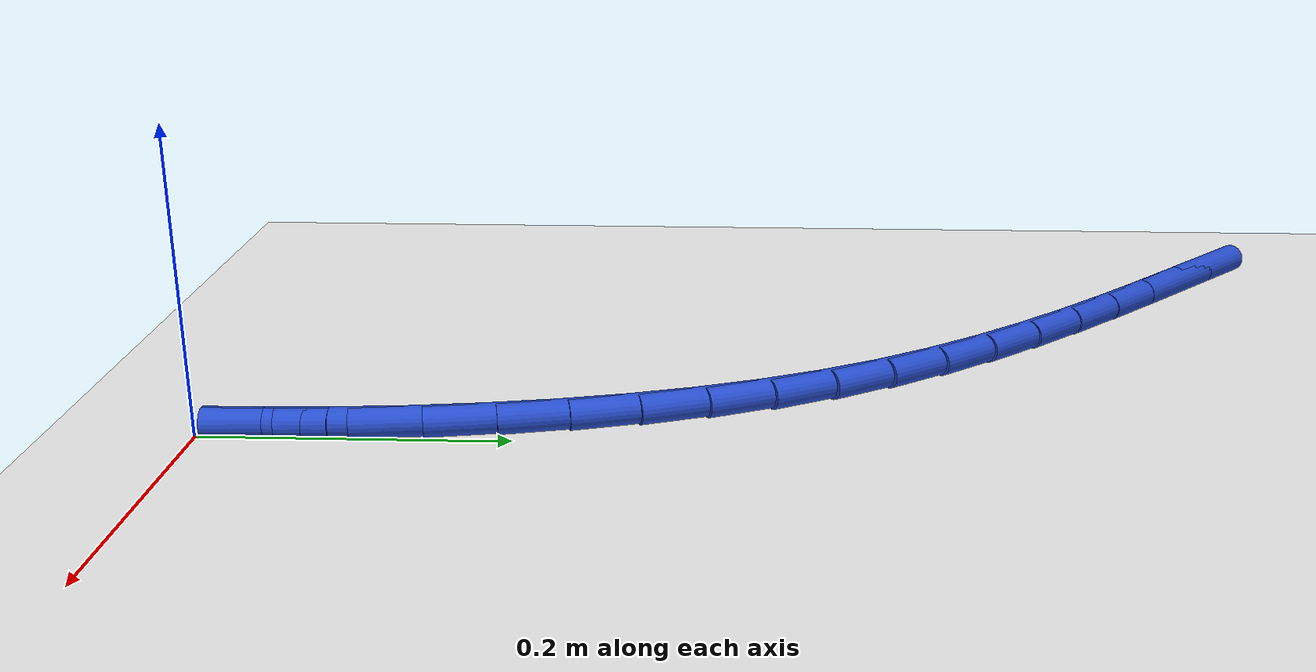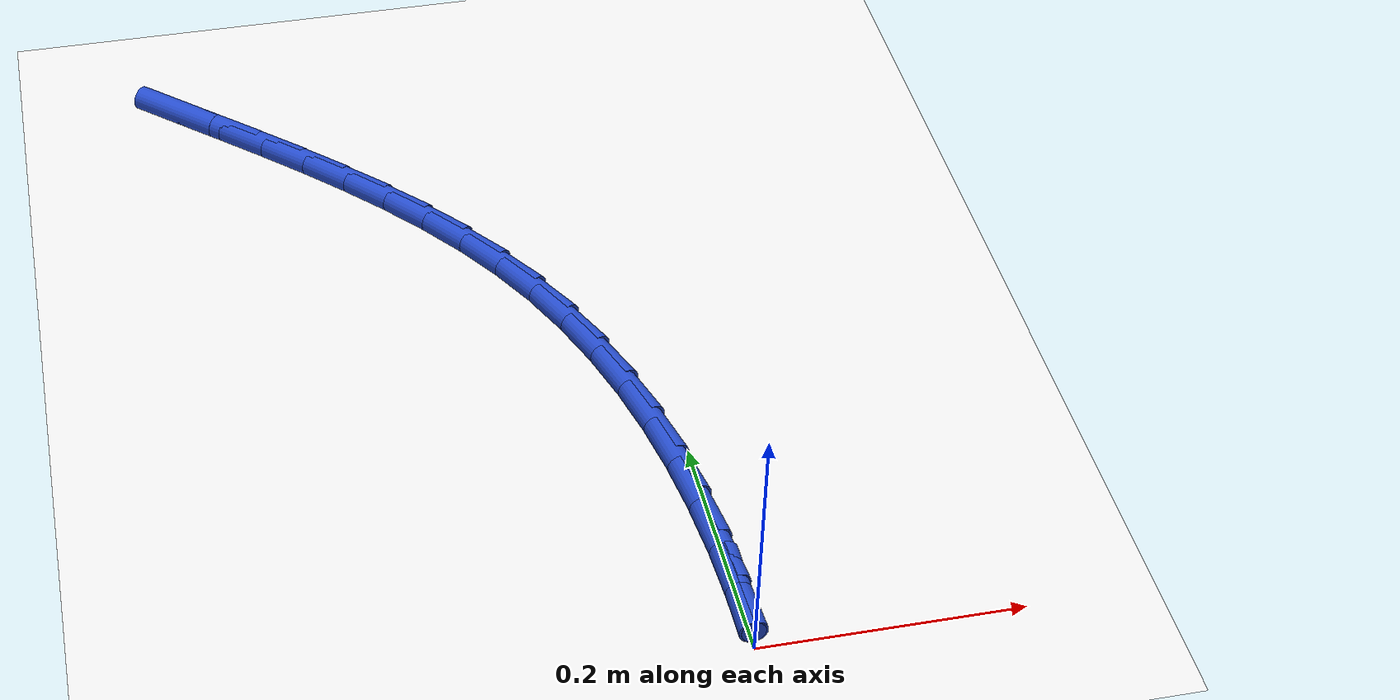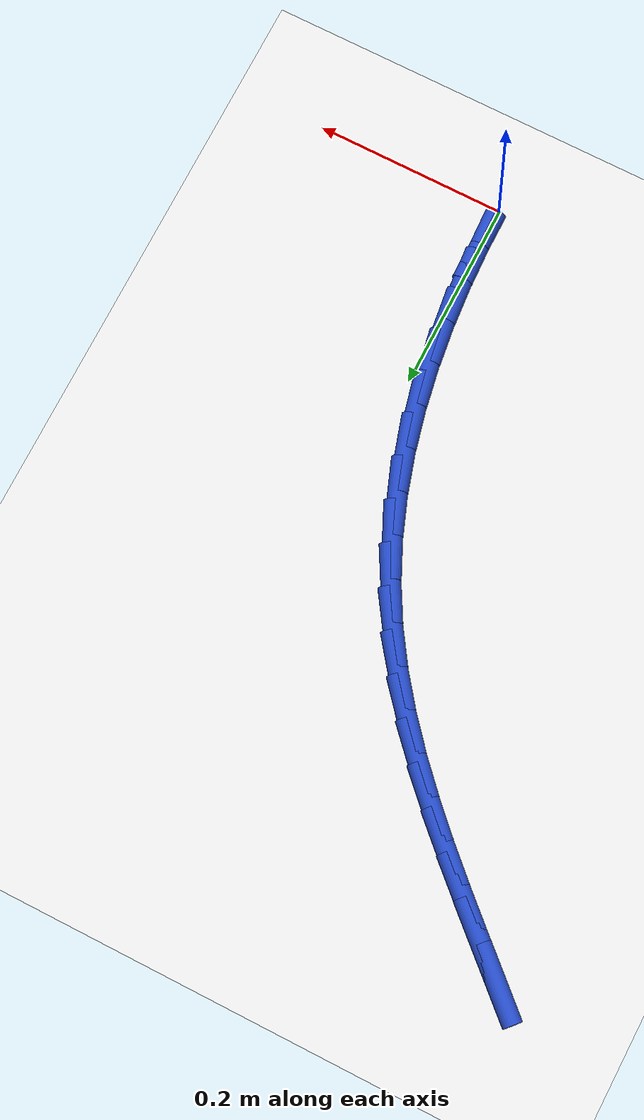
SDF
<sdf version="1.6">
 <world name="default">
  <model name="ground_plane">
   <static>1</static>
   <link name="link">
    <collision name="collision">
     <geometry><plane><normal>0 0 1</normal><size>100 100</size></plane></geometry>
     <surface><friction><ode><mu>100</mu><mu2>50</mu2></ode></friction></surface>
    </collision>
    <visual name="visual">
     <cast_shadows>0</cast_shadows>
     <geometry><plane><normal>0 0 1</normal><size>100 100</size></plane></geometry>
     <material>
      <script><uri>file://media/materials/scripts/gazebo.material</uri><name>Gazebo/WhiteGlow</name></script>
     </material>
    </visual>
   </link>
  </model>
  <model name="line">
   <link name="link_1">
    <pose>-0.0003006945332461743 0.045901734075765366 0.01 0 1.57 -1.5239608890561258</pose>
    <collision name="collision">
     <geometry><cylinder><radius>0.01</radius><length>0.08</length></cylinder></geometry>
    </collision>
    <visual name="visual">
     <material>
      <script><name>Gazebo/Blue</name><uri>file://media/materials/scripts/gazebo.material</uri></script>
     </material>
     <geometry><cylinder><radius>0.01</radius><length>0.08</length></cylinder></geometry>
    </visual>
   </link>
   <link name="link_2">
    <pose>-0.0024520561953644262 0.09180262643703892 0.01 0 1.57 -1.480812491341075</pose>
    <collision name="collision">
     <geometry><cylinder><radius>0.01</radius><length>0.08</length></cylinder></geometry>
    </collision>
    <visual name="visual">
     <material>
      <script><name>Gazebo/Blue</name><uri>file://media/materials/scripts/gazebo.material</uri></script>
     </material>
     <geometry><cylinder><radius>0.01</radius><length>0.08</length></cylinder></geometry>
    </visual>
   </link>
   <link name="link_3">
    <pose>-0.006572178366805169 0.13746633713611803 0.01 0 1.57 -1.4342981341041827</pose>
    <collision name="collision">
     <geometry><cylinder><radius>0.01</radius><length>0.08</length></cylinder></geometry>
    </collision>
    <visual name="visual">
     <material>
      <script><name>Gazebo/Blue</name><uri>file://media/materials/scripts/gazebo.material</uri></script>
     </material>
     <geometry><cylinder><radius>0.01</radius><length>0.08</length></cylinder></geometry>
    </visual>
   </link>
   <link name="link_4">
    <pose>-0.012779154428018809 0.18265652622530024 0.01 0 1.57 -1.3838881149002507</pose>
    <collision name="collision">
     <geometry><cylinder><radius>0.01</radius><length>0.08</length></cylinder></geometry>
    </collision>
    <visual name="visual">
     <material>
      <script><name>Gazebo/Blue</name><uri>file://media/materials/scripts/gazebo.material</uri></script>
     </material>
     <geometry><cylinder><radius>0.01</radius><length>0.08</length></cylinder></geometry>
    </visual>
   </link>
   <link name="link_5">
    <pose>-0.02119107775945575 0.227136853756883 0.01 0 1.57 -1.329032156727063</pose>
    <collision name="collision">
     <geometry><cylinder><radius>0.01</radius><length>0.08</length></cylinder></geometry>
    </collision>
    <visual name="visual">
     <material>
      <script><name>Gazebo/Blue</name><uri>file://media/materials/scripts/gazebo.material</uri></script>
     </material>
     <geometry><cylinder><radius>0.01</radius><length>0.08</length></cylinder></geometry>
    </visual>
   </link>
   <link name="link_6">
    <pose>-0.03192604174156644 0.2706709797831639 0.01 0 1.57 -1.2691762153304145</pose>
    <collision name="collision">
     <geometry><cylinder><radius>0.01</radius><length>0.08</length></cylinder></geometry>
    </collision>
    <visual name="visual">
     <material>
      <script><name>Gazebo/Blue</name><uri>file://media/materials/scripts/gazebo.material</uri></script>
     </material>
     <geometry><cylinder><radius>0.01</radius><length>0.08</length></cylinder></geometry>
    </visual>
   </link>
   <link name="link_7">
    <pose>-0.04510213975480125 0.3130225643564404 0.01 0 1.57 -1.2037932281394</pose>
    <collision name="collision">
     <geometry><cylinder><radius>0.01</radius><length>0.08</length></cylinder></geometry>
    </collision>
    <visual name="visual">
     <material>
      <script><name>Gazebo/Blue</name><uri>file://media/materials/scripts/gazebo.material</uri></script>
     </material>
     <geometry><cylinder><radius>0.01</radius><length>0.08</length></cylinder></geometry>
    </visual>
   </link>
   <link name="link_8">
    <pose>-0.0608374651796106 0.35395526752901 0.01 0 1.57 -1.1324320763547209</pose>
    <collision name="collision">
     <geometry><cylinder><radius>0.01</radius><length>0.08</length></cylinder></geometry>
    </collision>
    <visual name="visual">
     <material>
      <script><name>Gazebo/Blue</name><uri>file://media/materials/scripts/gazebo.material</uri></script>
     </material>
     <geometry><cylinder><radius>0.01</radius><length>0.08</length></cylinder></geometry>
    </visual>
   </link>
   <link name="link_9">
    <pose>-0.07925011139644492 0.39323274935317043 0.01 0 1.57 -1.055426300103091</pose>
    <collision name="collision">
     <geometry><cylinder><radius>0.01</radius><length>0.08</length></cylinder></geometry>
    </collision>
    <visual name="visual">
     <material>
      <script><name>Gazebo/Blue</name><uri>file://media/materials/scripts/gazebo.material</uri></script>
     </material>
     <geometry><cylinder><radius>0.01</radius><length>0.08</length></cylinder></geometry>
    </visual>
   </link>
   <link name="link_10">
    <pose>-0.10043933438602108 0.43064110363823793 0.01 0 1.57 -0.9810597001686475</pose>
    <collision name="collision">
     <geometry><cylinder><radius>0.01</radius><length>0.08</length></cylinder></geometry>
    </collision>
    <visual name="visual">
     <material>
      <script><name>Gazebo/Blue</name><uri>file://media/materials/scripts/gazebo.material</uri></script>
     </material>
     <geometry><cylinder><radius>0.01</radius><length>0.08</length></cylinder></geometry>
    </visual>
   </link>
   <link name="link_11">
    <pose>-0.12426717433968576 0.4662489282256752 0.01 0 1.57 -0.9158500449054999</pose>
    <collision name="collision">
     <geometry><cylinder><radius>0.01</radius><length>0.08</length></cylinder></geometry>
    </collision>
    <visual name="visual">
     <material>
      <script><name>Gazebo/Blue</name><uri>file://media/materials/scripts/gazebo.material</uri></script>
     </material>
     <geometry><cylinder><radius>0.01</radius><length>0.08</length></cylinder></geometry>
    </visual>
   </link>
   <link name="link_12">
    <pose>-0.15043350243103995 0.5003179506028407 0.01 0 1.57 -0.8605735555581524</pose>
    <collision name="collision">
     <geometry><cylinder><radius>0.01</radius><length>0.08</length></cylinder></geometry>
    </collision>
    <visual name="visual">
     <material>
      <script><name>Gazebo/Blue</name><uri>file://media/materials/scripts/gazebo.material</uri></script>
     </material>
     <geometry><cylinder><radius>0.01</radius><length>0.08</length></cylinder></geometry>
    </visual>
   </link>
   <link name="link_13">
    <pose>-0.17863504573243025 0.5331136426169617 0.01 0 1.57 -0.8154330089115209</pose>
    <collision name="collision">
     <geometry><cylinder><radius>0.01</radius><length>0.08</length></cylinder></geometry>
    </collision>
    <visual name="visual">
     <material>
      <script><name>Gazebo/Blue</name><uri>file://media/materials/scripts/gazebo.material</uri></script>
     </material>
     <geometry><cylinder><radius>0.01</radius><length>0.08</length></cylinder></geometry>
    </visual>
   </link>
   <link name="link_14">
    <pose>-0.2085685313162034 0.5649014761152653 0.01 0 1.57 -0.7803233747333668</pose>
    <collision name="collision">
     <geometry><cylinder><radius>0.01</radius><length>0.08</length></cylinder></geometry>
    </collision>
    <visual name="visual">
     <material>
      <script><name>Gazebo/Blue</name><uri>file://media/materials/scripts/gazebo.material</uri></script>
     </material>
     <geometry><cylinder><radius>0.01</radius><length>0.08</length></cylinder></geometry>
    </visual>
   </link>
   <link name="link_15">
    <pose>-0.2399306862547059 0.5959469229449786 0.01 0 1.57 -0.754974021610793</pose>
    <collision name="collision">
     <geometry><cylinder><radius>0.01</radius><length>0.08</length></cylinder></geometry>
    </collision>
    <visual name="visual">
     <material>
      <script><name>Gazebo/Blue</name><uri>file://media/materials/scripts/gazebo.material</uri></script>
     </material>
     <geometry><cylinder><radius>0.01</radius><length>0.08</length></cylinder></geometry>
    </visual>
   </link>
   <link name="link_16">
    <pose>-0.27241823762028455 0.6265154549533289 0.01 0 1.57 -0.739055744368491</pose>
    <collision name="collision">
     <geometry><cylinder><radius>0.01</radius><length>0.08</length></cylinder></geometry>
    </collision>
    <visual name="visual">
     <material>
      <script><name>Gazebo/Blue</name><uri>file://media/materials/scripts/gazebo.material</uri></script>
     </material>
     <geometry><cylinder><radius>0.01</radius><length>0.08</length></cylinder></geometry>
    </visual>
   </link>
   <link name="link_17">
    <pose>-0.3057279124852858 0.6568725439875429 0.01 0 1.57 -0.732250464347682</pose>
    <collision name="collision">
     <geometry><cylinder><radius>0.01</radius><length>0.08</length></cylinder></geometry>
    </collision>
    <visual name="visual">
     <material>
      <script><name>Gazebo/Blue</name><uri>file://media/materials/scripts/gazebo.material</uri></script>
     </material>
     <geometry><cylinder><radius>0.01</radius><length>0.08</length></cylinder></geometry>
    </visual>
   </link>
   <link name="link_18">
    <pose>-0.33955643792205653 0.6872836618948482 0.01 0 1.57 -0.734288737815658</pose>
    <collision name="collision">
     <geometry><cylinder><radius>0.01</radius><length>0.08</length></cylinder></geometry>
    </collision>
    <visual name="visual">
     <material>
      <script><name>Gazebo/Blue</name><uri>file://media/materials/scripts/gazebo.material</uri></script>
     </material>
     <geometry><cylinder><radius>0.01</radius><length>0.08</length></cylinder></geometry>
    </visual>
   </link>
   <link name="link_151">
    <pose>-0.00027470509196492014 0.045926907368691386 0.01 0 1.57 -1.564815044105304</pose>
    <collision name="collision">
     <geometry><cylinder><radius>0.01</radius><length>0.08</length></cylinder></geometry>
    </collision>
    <visual name="visual">
     <material>
      <script><name>Gazebo/Blue</name><uri>file://media/materials/scripts/gazebo.material</uri></script>
     </material>
     <geometry><cylinder><radius>0.01</radius><length>0.08</length></cylinder></geometry>
    </visual>
   </link>
  </model>
 </world>
</sdf>
